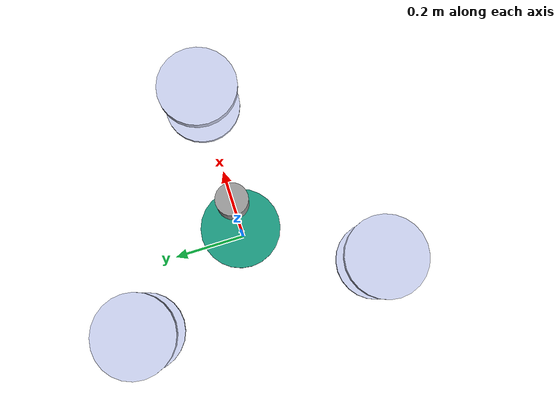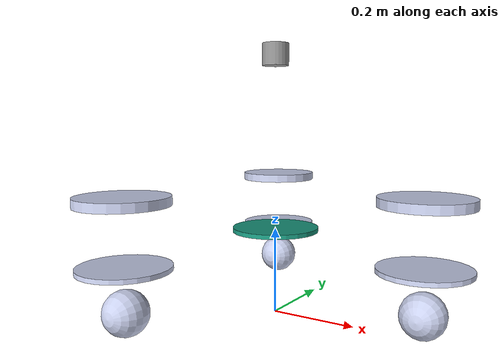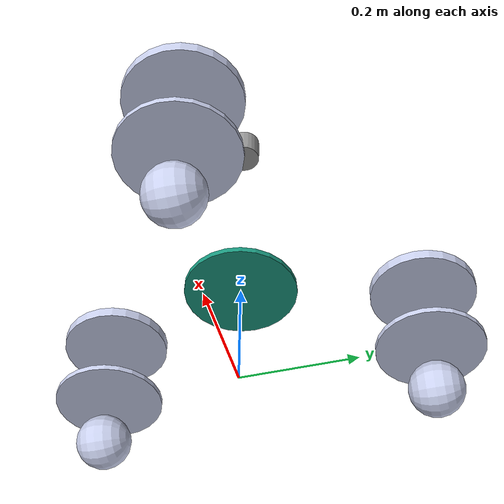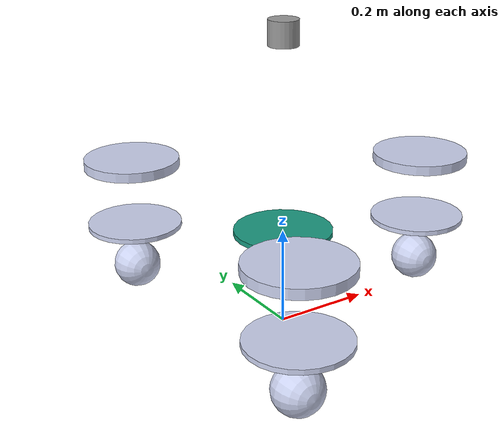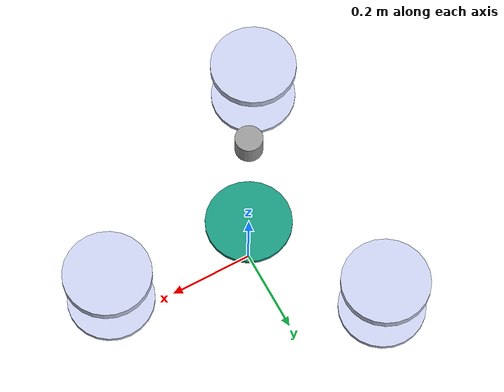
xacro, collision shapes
<?xml version="1.0"?>
<robot name="tri_steer" xmlns:xacro="http://www.ros.org/wiki/xacro">

  <!-- ========== 参数 ========== -->
  <xacro:property name="wheel_radius" value="0.05"/>
  <xacro:property name="body_radius" value="0.05"/>
  <xacro:property name="body_height" value="0.05"/>

  <xacro:property name="wheel_damping" value="0.0001"/>
  <xacro:property name="wheel_friction" value="0.0001"/>

  <xacro:property name="wheel_effot" value="300"/>
  <xacro:property name="wheel_velocity" value="20"/>

  <xacro:property name="turn_effot" value="300"/>
  <xacro:property name="turn_velocity" value="10"/>

  <xacro:property name="pos_wheel_z" value="-0.045"/>

  <xacro:property name="turn_radius" value="0.1"/>
  <xacro:property name="turn_height" value="0.01"/>

  <xacro:property name="lift_radius" value="0.1"/>
  <xacro:property name="lift_height" value="0.02"/>

  <!-- 轮子到车体中心的半径（决定转弯时轮速差） -->

  <!-- ========== base ========== -->
  <link name="base_footprint"/>

  <link name="base_link">
    <inertial>
      <origin xyz="0.008137 0.051566 0.0019645" rpy="0 0 0" />
      <mass value="5.0701" />
      <inertia ixx="0.056129" ixy="-5.0766E-05" ixz="0.00012401" iyy="0.10521" iyz="-5.3268E-05" izz="0.054858" />
    </inertial>
    <visual>
      <origin
        xyz="0 0 0.0" rpy="0 0 0" />
      <geometry>
        <mesh
          filename="package://tri_steer_description/meshes/base_link.STL" />
      </geometry>
      <material
        name="">
        <color rgba="0.1 0.6 0.5 1" />
      </material>
    </visual>
        <collision>
      <origin
        xyz="0 0.1 0"
        rpy="1.5708 0 0" />
      <geometry>
       <cylinder radius="${turn_radius}" length="${turn_height}"/>
       </geometry>
    </collision>
  </link>

   <joint name="base_link_joint" type="fixed">
    <origin xyz="0 0 0.1" rpy="1.5708 0 3.1416"/>
    <parent link="base_footprint"/>
    <child link="base_link"/>
  </joint>

  <!-- 舵轮 1 -->
    <link
    name="turn1">
    <inertial>
      <origin
        xyz="-8.1358E-05 0.088662 -0.0004925"
        rpy="0 0 0" />
      <mass
        value="3.2924" />
      <inertia
        ixx="0.006991"
        ixy="-1.731E-06"
        ixz="0.00016006"
        iyy="0.012782"
        iyz="-4.8359E-06"
        izz="0.0076006" />
    </inertial>
    <visual>
      <origin
        xyz="0 0 0"
        rpy="0 0 0" />
      <geometry>
        <mesh
          filename="package://tri_steer_description/meshes/turn1.STL" />
      </geometry>
      <material
        name="">
        <color
          rgba="0.79216 0.81961 0.93333 1" />
      </material>
    </visual>
  <collision>
  <origin xyz="0 0.05 0" rpy="1.5708 0 0"/>
  <geometry><cylinder radius="${turn_radius}" length="${turn_height}"/></geometry>
  </collision>

  </link>
  <joint
    name="joint11"
    type="continuous">
    <origin
      xyz="-0.35334 0 0"
      rpy="0 0 0" />
    <parent
      link="base_link" />
    <child
      link="turn1" />
    <axis
      xyz="0 -1 0" />
    <dynamics damping="${wheel_damping}" friction="${wheel_friction}"/>
    <limit effort="${turn_effot}" velocity="${turn_velocity}"/>
  </joint>
  <link
    name="wheel1">
    <inertial>
      <origin
        xyz="2.1316E-14 5.209E-14 0.043943"
        rpy="0 0 0" />
      <mass
        value="0.5" />
      <inertia
        ixx="0.00022144"
        ixy="3.1729E-19"
        ixz="2.4627E-18"
        iyy="0.00022144"
        iyz="3.3994E-17"
        izz="0.00034522" />
    </inertial>
    <visual>
      <origin
        xyz="0 0 0"
        rpy="0 0 0" />
      <geometry>
        <mesh
          filename="package://tri_steer_description/meshes/wheel1.STL" />
      </geometry>
      <material
        name="">
        <color
          rgba="0.79216 0.81961 0.93333 1" />
      </material>
    </visual>
    <collision>
      <origin
        xyz="0 0 0.045"
        rpy="0 0 0" />
      <geometry>
       <sphere radius= "${wheel_radius}"/>
      </geometry>
    </collision>
  </link>
  <joint
    name="joint12"
    type="continuous">
    <origin
      xyz="0 -0.045 -0.045"
      rpy="0 0 0" />
    <parent
      link="turn1" />
    <child
      link="wheel1" />
    <axis
      xyz="0 0 1" />
    <dynamics damping="${wheel_damping}" friction="${wheel_friction}" />
    <limit effort="${wheel_effot}" velocity="${wheel_velocity}" />

  </joint>
  <link
    name="lift1">
    <inertial>
      <origin
        xyz="-0.00029755 -0.026187 -8.3752E-05"
        rpy="0 0 0" />
      <mass
        value="0.54659" />
      <inertia
        ixx="0.0014575"
        ixy="-2.8022E-07"
        ixz="-2.5959E-07"
        iyy="0.0026981"
        iyz="-6.4239E-07"
        izz="0.0014564" />
    </inertial>
    <visual>
      <origin
        xyz="0 0.105 0"
        rpy="0 0 0" />
      <geometry>
        <mesh
          filename="package://tri_steer_description/meshes/lift1.STL" />
      </geometry>
      <material
        name="">
        <color
          rgba="0.79216 0.81961 0.93333 1" />
      </material>
    </visual>
    <collision>
    <origin xyz="0 ${0-lift_height/2+0.105} 0" rpy="1.5708 0 0"/>
      <geometry><cylinder radius="${lift_radius}" length="${lift_height}"/></geometry>
    </collision>
  </link>
  <joint
    name="joint13"
    type="prismatic">
    <origin
      xyz="0 0.095 0"
      rpy="0 0 0" />
    <parent
      link="turn1" />
    <child
      link="lift1" />
    <axis
      xyz="0 1 0" />
  <dynamics damping="0.2" friction="0.1"/>
  <limit lower="0" upper="0.05" effort="2000" velocity="0.1"/>

  </joint>

  <!-- 舵轮 2 -->
    <link
    name="turn2">
    <inertial>
      <origin
        xyz="-8.1358E-05 0.088662 -0.0004925"
        rpy="0 0 0" />
      <mass
        value="3.2924" />
      <inertia
        ixx="0.006991"
        ixy="-1.731E-06"
        ixz="0.00016006"
        iyy="0.012782"
        iyz="-4.8359E-06"
        izz="0.0076006" />
    </inertial>
    <visual>
      <origin
        xyz="0 0 0"
        rpy="0 0 0" />
      <geometry>
        <mesh
          filename="package://tri_steer_description/meshes/turn2.STL" />
      </geometry>
      <material
        name="">
        <color
          rgba="0.79216 0.81961 0.93333 1" />
      </material>
    </visual>
  <collision>
  <origin xyz="0 0.05 0" rpy="1.5708 0 0"/>
  <geometry><cylinder radius="${turn_radius}" length="${turn_height}"/></geometry>
  </collision>

  </link>
  <joint
    name="joint21"
    type="continuous">
    <origin
      xyz="0.17667 0 -0.306"
      rpy="0 0 0" />
    <parent
      link="base_link" />
    <child
      link="turn2" />
    <axis
      xyz="0 -1 0" />
    <dynamics damping="${wheel_damping}" friction="${wheel_friction}"/>
    <limit effort="${turn_effot}" velocity="${turn_velocity}"/>
  </joint>
  <link
    name="wheel2">
    <inertial>
      <origin
        xyz="-1.3045E-14 3.1183E-14 0.046057"
        rpy="0 0 0" />
      <mass
        value="0.5" />
      <inertia
        ixx="0.00022144"
        ixy="4.1394E-19"
        ixz="-2.8135E-19"
        iyy="0.00022144"
        iyz="6.5115E-17"
        izz="0.00034522" />
    </inertial>
    <visual>
      <origin
        xyz="0 0 0"
        rpy="0 0 0" />
      <geometry>
        <mesh
          filename="package://tri_steer_description/meshes/wheel2.STL" />
      </geometry>
      <material
        name="">
        <color
          rgba="0.79216 0.81961 0.93333 1" />
      </material>
    </visual>
    <collision>
      <origin
        xyz="0 0 0.045"
        rpy="0 0 0" />
      <geometry>
       <sphere radius= "${wheel_radius}"/>
      </geometry>
    </collision>
  </link>
  <joint
    name="joint22"
    type="continuous">
    <origin
      xyz="0 -0.045 -0.045"
      rpy="0 0 0" />
    <parent
      link="turn2" />
    <child
      link="wheel2" />
    <axis
      xyz="0 0 1" />
    <dynamics damping="${wheel_damping}" friction="${wheel_friction}"/>
    <limit effort="${wheel_effot}" velocity="${wheel_velocity}"/>
  </joint>
  <link
    name="lift2">
    <inertial>
      <origin
        xyz="-6.5992E-05 -0.026187 -0.0003037"
        rpy="0 0 0" />
      <mass
        value="0.5466" />
      <inertia
        ixx="0.0014569"
        ixy="4.3412E-07"
        ixz="5.8934E-07"
        iyy="0.0026981"
        iyz="-5.5014E-07"
        izz="0.001457" />
    </inertial>
    <visual>
      <origin
        xyz="0 0.105 0"
        rpy="0 0 0" />
      <geometry>
        <mesh
          filename="package://tri_steer_description/meshes/lift2.STL" />
      </geometry>
      <material
        name="">
        <color
          rgba="0.79216 0.81961 0.93333 1" />
      </material>
    </visual>
    <collision>
    <origin xyz="0 ${0-lift_height/2+0.105} 0" rpy="1.5708 0 0"/>
      <geometry><cylinder radius="${lift_radius}" length="${lift_height}"/></geometry>
    </collision>
  </link>
  <joint
    name="joint23"
    type="prismatic">
    <origin
      xyz="0 0.095 0"
      rpy="0 0 0" />
    <parent
      link="turn2" />
    <child
      link="lift2" />
    <axis
      xyz="0 1 0" />
  <dynamics damping="0.2" friction="0.1"/>
  <limit lower="0" upper="0.05" effort="2000" velocity="0.1"/>

  </joint>
  <link
    name="turn3">
    <inertial>
      <origin
        xyz="-8.1365E-05 0.088662 -0.00049252"
        rpy="0 0 0" />
      <mass
        value="3.2924" />
      <inertia
        ixx="0.006991"
        ixy="-1.731E-06"
        ixz="0.00016006"
        iyy="0.012782"
        iyz="-4.8359E-06"
        izz="0.0076006" />
    </inertial>
    <visual>
      <origin
        xyz="0 0 0"
        rpy="0 0 0" />
      <geometry>
        <mesh
          filename="package://tri_steer_description/meshes/turn3.STL" />
      </geometry>
      <material
        name="">
        <color
          rgba="0.79216 0.81961 0.93333 1" />
      </material>
    </visual>
  <collision>
  <origin xyz="0 0.05 0" rpy="1.5708 0 0"/>
  <geometry><cylinder radius="${turn_radius}" length="${turn_height}"/></geometry>
  </collision>
  </link>
  <joint
    name="joint31"
    type="continuous">
    <origin
      xyz="0.17667 0 0.306"
      rpy="0 0 0" />
    <parent
      link="base_link" />
    <child
      link="turn3" />
    <axis
      xyz="0 -1 0" />
    <dynamics damping="${wheel_damping}" friction="${wheel_friction}"/>
    <limit effort="${turn_effot}" velocity="${turn_velocity}"/>
  </joint>

  <link
    name="wheel3">
    <inertial>
      <origin
        xyz="-1.2934E-14 -7.1637E-14 -0.043943"
        rpy="0 0 0" />
      <mass
        value="0.5" />
      <inertia
        ixx="0.00022144"
        ixy="4.2629E-19"
        ixz="-2.7812E-19"
        iyy="0.00022144"
        iyz="5.1358E-17"
        izz="0.00034522" />
    </inertial>
    <visual>
      <origin
        xyz="0 0 0"
        rpy="0 0 0" />
      <geometry>
        <mesh
          filename="package://tri_steer_description/meshes/wheel3.STL" />
      </geometry>
      <material
        name="">
        <color
          rgba="0.79216 0.81961 0.93333 1" />
      </material>
    </visual>
    <collision>
      <origin
        xyz="0 0 -0.045"
        rpy="0 0 0" />
      <geometry>
       <sphere radius= "${wheel_radius}"/>
      </geometry>
    </collision>
  </link>

  <joint
    name="joint32"
    type="continuous">
    <origin
      xyz="0 -0.045 0.045"
      rpy="0 0 0" />
    <parent
      link="turn3" />
    <child
      link="wheel3" />
    <axis
      xyz="0 0 1" />
    <dynamics damping="${wheel_damping}" friction="${wheel_friction}"/>
    <limit effort="${wheel_effot}" velocity="${wheel_velocity}"/>
  </joint>
  <link
    name="lift3">
    <inertial>
      <origin
        xyz="-6.6075E-05 -0.026187 -0.00030366"
        rpy="0 0 0" />
      <mass
        value="0.5466" />
      <inertia
        ixx="0.0014569"
        ixy="4.3412E-07"
        ixz="5.8934E-07"
        iyy="0.0026981"
        iyz="-5.5014E-07"
        izz="0.001457" />
    </inertial>
    <visual>
      <origin
        xyz="0 0.105 0"
        rpy="0 0 0" />
      <geometry>
        <mesh
          filename="package://tri_steer_description/meshes/lift3.STL" />
      </geometry>
      <material
        name="">
        <color
          rgba="0.79216 0.81961 0.93333 1" />
      </material>
    </visual>
    <collision>
    <origin xyz="0 ${0-lift_height/2+0.105} 0" rpy="1.5708 0 0"/>
      <geometry><cylinder radius="${lift_radius}" length="${lift_height}"/></geometry>
    </collision>
  </link>
  <joint
    name="joint33"
    type="prismatic">
    <origin
      xyz="0 0.095 0"
      rpy="0 0 0" />
    <parent
      link="turn3" />
    <child
      link="lift3" />
    <axis
      xyz="0 1 0" />
    <dynamics damping="0.2" friction="0.1"/>
    <limit lower="0" upper="0.05" effort="2000" velocity="0.1"/>

</joint>

  <!-- ========== 激光雷达 link（用于 TF 和外观）========== -->
  <link name="laser">
    <inertial>
      <mass value="0.1"/>
      <origin xyz="0 0 0" rpy="0 0 0"/>
      <inertia ixx="1e-4" ixy="0" ixz="0" iyy="1e-4" iyz="0" izz="1e-4"/>
    </inertial>

    <visual>
      <origin xyz="0 0 0" rpy="0 0 0"/>
      <geometry>
        <cylinder radius="0.03" length="0.05"/>
      </geometry>
      <material name="Gray">
        <color rgba="0.6 0.6 0.6 1"/>
      </material>
    </visual>

    <collision>
      <origin xyz="0 0 0" rpy="0 0 0"/>
      <geometry>
        <cylinder radius="0.03" length="0.05"/>
      </geometry>
    </collision>
  </link>

  <!-- laser 固定到 base_link 上（根据你雷达实际安装位置改 xyz） -->
  <joint name="laser_joint" type="fixed">
    <parent link="base_link"/>
    <child link="laser"/>
    <!-- 例：雷达在车体前方 0.20m，高 0.12m -->
    <origin xyz="0.0 0.5 0.0" rpy="1.5708 0 0"/>
  </joint>

<!-- ========== Gazebo 激光传感器：发布 /scan ========== -->
<gazebo reference="laser">
  <sensor type="ray" name="laser_sensor">
    <pose>0 0 0 0 0 0</pose>
    <!-- 雷达扫描射线是否可见 -->
    <!-- 雷达更新频率 -->
    <update_rate>10</update_rate>

    <ray>
      <scan>
        <horizontal>
          <samples>1440</samples>
          <resolution>1</resolution>
          <min_angle>-3.14</min_angle>  <!-- -90deg -->
          <max_angle> 3.14</max_angle>  <!-- +90deg -->
        </horizontal>
      </scan>
      <range>
        <min>0.10</min>
        <max>10.0</max>
        <resolution>0.01</resolution>
      </range>
      <noise>
        <type>gaussian</type>
        <mean>0.0</mean>
        <stddev>0.01</stddev>
      </noise>
    </ray>

    <plugin name="gazebo_rplidar" filename="libgazebo_ros_laser.so">
      <!-- 使用ros包仿真，使用/scan -->
      <topicName>/scan</topicName>
      <!-- 如果需要使用ros包仿真的话，注释掉/laser_scan，平时使用/laser_scan -->
      <frameName>laser</frameName>
    </plugin>
  </sensor>
</gazebo>

    <!-- Gazebo friction for wheel -->
    <gazebo reference="wheel1">
      <mu1>250</mu1>
      <mu2>250</mu2>
      <kp>200000</kp>
      <kd>1200</kd>
      <material>Gazebo/Black</material>
    </gazebo>

    <gazebo reference="wheel2">
      <mu1>250</mu1>
      <mu2>250</mu2>
      <kp>200000</kp>
      <kd>1200</kd>
      <material>Gazebo/Black</material>
    </gazebo>

    <gazebo reference="wheel3">
      <mu1>250</mu1>
      <mu2>250</mu2>
      <kp>200000</kp>
      <kd>1200</kd>
      <material>Gazebo/Black</material>
    </gazebo>

    <gazebo reference="turn1">
      <material>Gazebo/Green</material>
    </gazebo>

    <gazebo reference="turn2">
      <material>Gazebo/Green</material>
    </gazebo>

  <gazebo reference="turn3">
      <material>Gazebo/Green</material>
    </gazebo>

  <!-- ===== transmissions for tri_steer ros_control ===== -->

  <!-- steer joints: Position -->
  <transmission name="steer_1_trans">
    <type>transmission_interface/SimpleTransmission</type>
    <joint name="joint11">
      <hardwareInterface>hardware_interface/PositionJointInterface</hardwareInterface>
    </joint>
    <actuator name="steer_1_motor">
      <hardwareInterface>hardware_interface/PositionJointInterface</hardwareInterface>
      <mechanicalReduction>1</mechanicalReduction>
    </actuator>
  </transmission>

  <transmission name="steer_2_trans">
    <type>transmission_interface/SimpleTransmission</type>
    <joint name="joint21">
      <hardwareInterface>hardware_interface/PositionJointInterface</hardwareInterface>
    </joint>
    <actuator name="steer_2_motor">
      <hardwareInterface>hardware_interface/PositionJointInterface</hardwareInterface>
      <mechanicalReduction>1</mechanicalReduction>
    </actuator>
  </transmission>

  <transmission name="steer_3_trans">
    <type>transmission_interface/SimpleTransmission</type>
    <joint name="joint31">
      <hardwareInterface>hardware_interface/PositionJointInterface</hardwareInterface>
    </joint>
    <actuator name="steer_3_motor">
      <hardwareInterface>hardware_interface/PositionJointInterface</hardwareInterface>
      <mechanicalReduction>1</mechanicalReduction>
    </actuator>
  </transmission>

  <!-- wheel joints: Velocity -->
  <transmission name="wheel_1_trans">
    <type>transmission_interface/SimpleTransmission</type>
    <joint name="joint12">
      <hardwareInterface>hardware_interface/VelocityJointInterface</hardwareInterface>
    </joint>
    <actuator name="wheel_1_motor">
      <hardwareInterface>hardware_interface/VelocityJointInterface</hardwareInterface>
      <mechanicalReduction>1</mechanicalReduction>
    </actuator>
  </transmission>

  <transmission name="wheel_2_trans">
    <type>transmission_interface/SimpleTransmission</type>
    <joint name="joint22">
      <hardwareInterface>hardware_interface/VelocityJointInterface</hardwareInterface>
    </joint>
    <actuator name="wheel_2_motor">
      <hardwareInterface>hardware_interface/VelocityJointInterface</hardwareInterface>
      <mechanicalReduction>1</mechanicalReduction>
    </actuator>
  </transmission>

  <transmission name="wheel_3_trans">
    <type>transmission_interface/SimpleTransmission</type>
    <joint name="joint32">
      <hardwareInterface>hardware_interface/VelocityJointInterface</hardwareInterface>
    </joint>
    <actuator name="wheel_3_motor">
      <hardwareInterface>hardware_interface/VelocityJointInterface</hardwareInterface>
      <mechanicalReduction>1</mechanicalReduction>
    </actuator>
  </transmission>

  <!-- lift joints: Position (如果你要控升降就保留；暂时不用也可以先不启 controller) -->
  <transmission name="lift_1_trans">
    <type>transmission_interface/SimpleTransmission</type>
    <joint name="joint13">
      <hardwareInterface>hardware_interface/PositionJointInterface</hardwareInterface>
    </joint>
    <actuator name="lift_1_motor">
      <hardwareInterface>hardware_interface/PositionJointInterface</hardwareInterface>
      <mechanicalReduction>1</mechanicalReduction>
    </actuator>
  </transmission>

  <transmission name="lift_2_trans">
    <type>transmission_interface/SimpleTransmission</type>
    <joint name="joint23">
      <hardwareInterface>hardware_interface/PositionJointInterface</hardwareInterface>
    </joint>
    <actuator name="lift_2_motor">
      <hardwareInterface>hardware_interface/PositionJointInterface</hardwareInterface>
      <mechanicalReduction>1</mechanicalReduction>
    </actuator>
  </transmission>

  <transmission name="lift_3_trans">
    <type>transmission_interface/SimpleTransmission</type>
    <joint name="joint33">
      <hardwareInterface>hardware_interface/PositionJointInterface</hardwareInterface>
    </joint>
    <actuator name="lift_3_motor">
      <hardwareInterface>hardware_interface/PositionJointInterface</hardwareInterface>
      <mechanicalReduction>1</mechanicalReduction>
    </actuator>
  </transmission>

  <!-- ========== Gazebo ros_control 插件 ========== -->
  <gazebo>
    <plugin name="gazebo_ros_control" filename="libgazebo_ros_control.so">
      <robotNamespace>/</robotNamespace>
      <robotParam>/robot_description</robotParam>
      <rosDebugLevel>Debug</rosDebugLevel>
      <!-- 防止gazebo与robot_state_publisher冲突以下两者设定为false -->
      <publishWheelTF>false</publishWheelTF>
      <publishTf>1</publishTf>
      <publishWheelJointState>false</publishWheelJointState>
      <updateRate>10.0</updateRate>

      <!-- 里程计话题 -->
      <odometryTopic>odom</odometryTopic>
      <odometryFrame>odom</odometryFrame>
      <odometryRate>100.0</odometryRate>   <!-- 更新速度 -->
      <robotBaseFrame>base_footprint</robotBaseFrame>   <!-- 根坐标系 -->
      <cmdVelTimeOut>0.25</cmdVelTimeOut>
      <publishOdometryTf>1</publishOdometryTf>

      <broadcastTF>1</broadcastTF>
    </plugin>
  </gazebo>

  <!-- 以下是使用gazebo插件获取机器人位置真值的插件 -->
  <gazebo>
    <plugin name="p3d_base_controller" filename="libgazebo_ros_p3d.so">
      <alwaysOn>true</alwaysOn>
      <updateRate>100.0</updateRate>
      <bodyName>base_footprint</bodyName>
      <topicName>truthPose</topicName>
      <gaussianNoise>0.0</gaussianNoise>
      <frameName>map</frameName>
      <xyzOffsets>0 0 0</xyzOffsets>
      <rpyOffsets>0 0 0</rpyOffsets>
    </plugin>
  </gazebo>

</robot>
